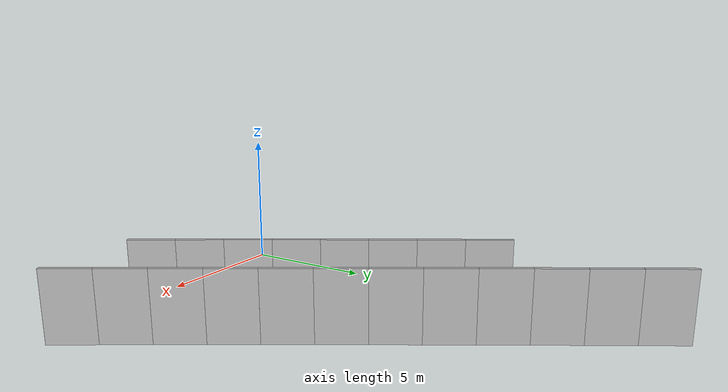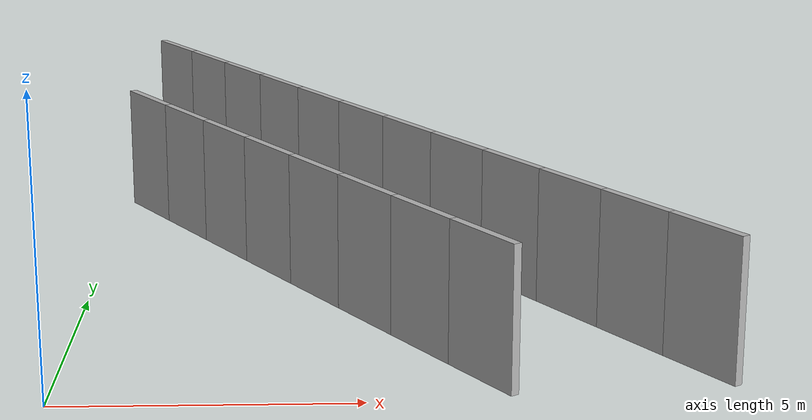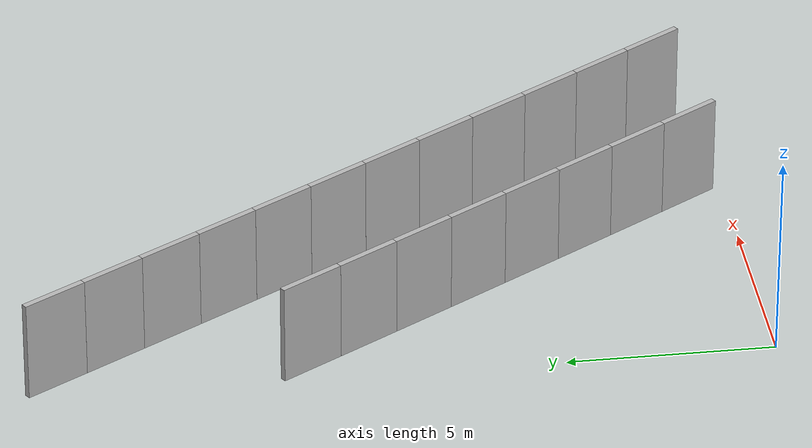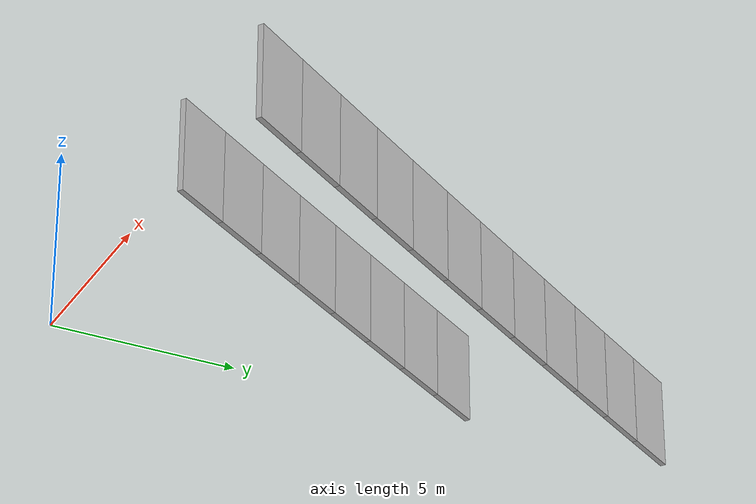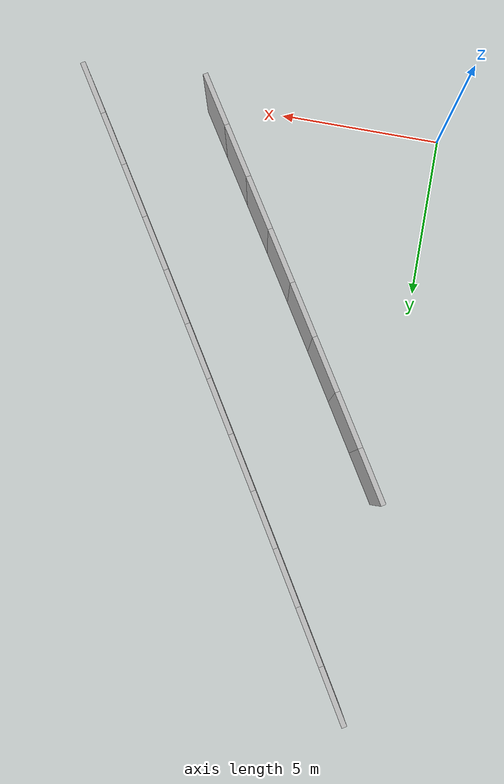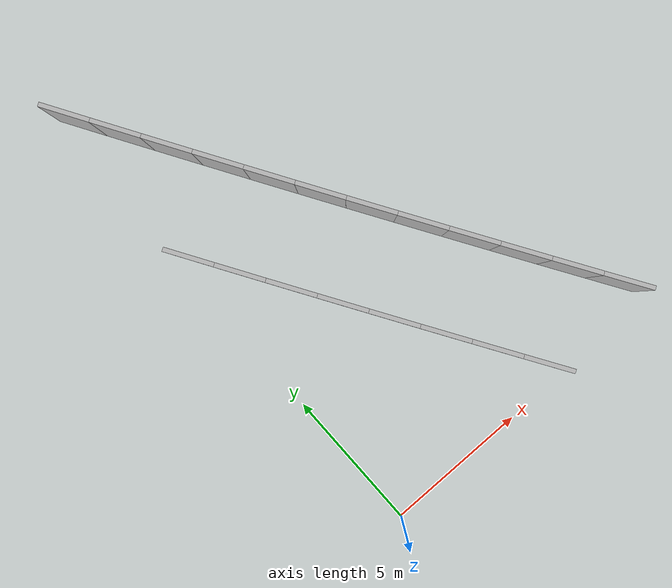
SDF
<?xml version="1.0" ?>
<sdf version="1.6">
  <model name="sps_4826">
    <pose frame="">0 0 0 0 -0 0</pose>
    <static>1</static>
    <self_collide>0</self_collide>
    <allow_auto_disable>0</allow_auto_disable>
    <link name="Wall6490">
      <kinematic>0</kinematic>
      <gravity>1</gravity>
      <self_collide>0</self_collide>
      <collision name="collision">
        <geometry>
          <box>
            <size>1.68624 0.15 2.5</size>
          </box>
        </geometry>
        <pose frame="">0 0 0 0 -0 0</pose>
      </collision>
      <visual name="visual">
        <geometry>
          <box>
            <size>1.68624 0.15 2.5</size>
          </box>
        </geometry>
        <pose frame="">0 0 0 0 -0 0</pose>
        <cast_shadows>1</cast_shadows>
        <transparency>0.0</transparency>
      </visual>
      <pose frame="">0.605552 10.9577 1.25 0 0 -1.01631</pose>
    </link>
    <link name="Wall6491">
      <kinematic>0</kinematic>
      <gravity>1</gravity>
      <self_collide>0</self_collide>
      <collision name="collision">
        <geometry>
          <box>
            <size>1.68605 0.15 2.5</size>
          </box>
        </geometry>
        <pose frame="">0 0 0 0 -0 0</pose>
      </collision>
      <visual name="visual">
        <geometry>
          <box>
            <size>1.68605 0.15 2.5</size>
          </box>
        </geometry>
        <pose frame="">0 0 0 0 -0 0</pose>
        <cast_shadows>1</cast_shadows>
        <transparency>0.0</transparency>
      </visual>
      <pose frame="">1.49447 9.52492 1.25 0 0 -1.01471</pose>
    </link>
    <link name="Wall6492">
      <kinematic>0</kinematic>
      <gravity>1</gravity>
      <self_collide>0</self_collide>
      <collision name="collision">
        <geometry>
          <box>
            <size>1.68621 0.15 2.5</size>
          </box>
        </geometry>
        <pose frame="">0 0 0 0 -0 0</pose>
      </collision>
      <visual name="visual">
        <geometry>
          <box>
            <size>1.68621 0.15 2.5</size>
          </box>
        </geometry>
        <pose frame="">0 0 0 0 -0 0</pose>
        <cast_shadows>1</cast_shadows>
        <transparency>0.0</transparency>
      </visual>
      <pose frame="">2.38576 8.09361 1.25 0 0 -1.01298</pose>
    </link>
    <link name="Wall6493">
      <kinematic>0</kinematic>
      <gravity>1</gravity>
      <self_collide>0</self_collide>
      <collision name="collision">
        <geometry>
          <box>
            <size>1.68632 0.15 2.5</size>
          </box>
        </geometry>
        <pose frame="">0 0 0 0 -0 0</pose>
      </collision>
      <visual name="visual">
        <geometry>
          <box>
            <size>1.68632 0.15 2.5</size>
          </box>
        </geometry>
        <pose frame="">0 0 0 0 -0 0</pose>
        <cast_shadows>1</cast_shadows>
        <transparency>0.0</transparency>
      </visual>
      <pose frame="">3.27956 6.66371 1.25 0 0 -1.01131</pose>
    </link>
    <link name="Wall6494">
      <kinematic>0</kinematic>
      <gravity>1</gravity>
      <self_collide>0</self_collide>
      <collision name="collision">
        <geometry>
          <box>
            <size>1.68624 0.15 2.5</size>
          </box>
        </geometry>
        <pose frame="">0 0 0 0 -0 0</pose>
      </collision>
      <visual name="visual">
        <geometry>
          <box>
            <size>1.68624 0.15 2.5</size>
          </box>
        </geometry>
        <pose frame="">0 0 0 0 -0 0</pose>
        <cast_shadows>1</cast_shadows>
        <transparency>0.0</transparency>
      </visual>
      <pose frame="">4.17577 5.2353 1.25 0 0 -1.00961</pose>
    </link>
    <link name="Wall6495">
      <kinematic>0</kinematic>
      <gravity>1</gravity>
      <self_collide>0</self_collide>
      <collision name="collision">
        <geometry>
          <box>
            <size>1.68617 0.15 2.5</size>
          </box>
        </geometry>
        <pose frame="">0 0 0 0 -0 0</pose>
      </collision>
      <visual name="visual">
        <geometry>
          <box>
            <size>1.68617 0.15 2.5</size>
          </box>
        </geometry>
        <pose frame="">0 0 0 0 -0 0</pose>
        <cast_shadows>1</cast_shadows>
        <transparency>0.0</transparency>
      </visual>
      <pose frame="">5.07436 3.80849 1.25 0 0 -1.00791</pose>
    </link>
    <link name="Wall6496">
      <kinematic>0</kinematic>
      <gravity>1</gravity>
      <self_collide>0</self_collide>
      <collision name="collision">
        <geometry>
          <box>
            <size>1.68623 0.15 2.5</size>
          </box>
        </geometry>
        <pose frame="">0 0 0 0 -0 0</pose>
      </collision>
      <visual name="visual">
        <geometry>
          <box>
            <size>1.68623 0.15 2.5</size>
          </box>
        </geometry>
        <pose frame="">0 0 0 0 -0 0</pose>
        <cast_shadows>1</cast_shadows>
        <transparency>0.0</transparency>
      </visual>
      <pose frame="">5.97536 2.38319 1.25 0 0 -1.00623</pose>
    </link>
    <link name="Wall6497">
      <kinematic>0</kinematic>
      <gravity>1</gravity>
      <self_collide>0</self_collide>
      <collision name="collision">
        <geometry>
          <box>
            <size>1.68609 0.15 2.5</size>
          </box>
        </geometry>
        <pose frame="">0 0 0 0 -0 0</pose>
      </collision>
      <visual name="visual">
        <geometry>
          <box>
            <size>1.68609 0.15 2.5</size>
          </box>
        </geometry>
        <pose frame="">0 0 0 0 -0 0</pose>
        <cast_shadows>1</cast_shadows>
        <transparency>0.0</transparency>
      </visual>
      <pose frame="">6.87865 0.959395 1.25 0 0 -1.00467</pose>
    </link>
    <link name="Wall9243">
      <kinematic>0</kinematic>
      <gravity>1</gravity>
      <self_collide>0</self_collide>
      <collision name="collision">
        <geometry>
          <box>
            <size>1.68079 0.15 2.5</size>
          </box>
        </geometry>
        <pose frame="">0 0 0 0 -0 0</pose>
      </collision>
      <visual name="visual">
        <geometry>
          <box>
            <size>1.68079 0.15 2.5</size>
          </box>
        </geometry>
        <pose frame="">0 0 0 0 -0 0</pose>
        <cast_shadows>1</cast_shadows>
        <transparency>0.0</transparency>
      </visual>
      <pose frame="">10.482 1.25838 1.25 0 -0 2.13866</pose>
    </link>
    <link name="Wall9244">
      <kinematic>0</kinematic>
      <gravity>1</gravity>
      <self_collide>0</self_collide>
      <collision name="collision">
        <geometry>
          <box>
            <size>1.6808 0.15 2.5</size>
          </box>
        </geometry>
        <pose frame="">0 0 0 0 -0 0</pose>
      </collision>
      <visual name="visual">
        <geometry>
          <box>
            <size>1.6808 0.15 2.5</size>
          </box>
        </geometry>
        <pose frame="">0 0 0 0 -0 0</pose>
        <cast_shadows>1</cast_shadows>
        <transparency>0.0</transparency>
      </visual>
      <pose frame="">9.57915 2.67607 1.25 0 -0 2.13711</pose>
    </link>
    <link name="Wall9245">
      <kinematic>0</kinematic>
      <gravity>1</gravity>
      <self_collide>0</self_collide>
      <collision name="collision">
        <geometry>
          <box>
            <size>1.68082 0.15 2.5</size>
          </box>
        </geometry>
        <pose frame="">0 0 0 0 -0 0</pose>
      </collision>
      <visual name="visual">
        <geometry>
          <box>
            <size>1.68082 0.15 2.5</size>
          </box>
        </geometry>
        <pose frame="">0 0 0 0 -0 0</pose>
        <cast_shadows>1</cast_shadows>
        <transparency>0.0</transparency>
      </visual>
      <pose frame="">8.67864 4.09529 1.25 0 -0 2.1353</pose>
    </link>
    <link name="Wall9246">
      <kinematic>0</kinematic>
      <gravity>1</gravity>
      <self_collide>0</self_collide>
      <collision name="collision">
        <geometry>
          <box>
            <size>1.6809 0.15 2.5</size>
          </box>
        </geometry>
        <pose frame="">0 0 0 0 -0 0</pose>
      </collision>
      <visual name="visual">
        <geometry>
          <box>
            <size>1.6809 0.15 2.5</size>
          </box>
        </geometry>
        <pose frame="">0 0 0 0 -0 0</pose>
        <cast_shadows>1</cast_shadows>
        <transparency>0.0</transparency>
      </visual>
      <pose frame="">7.78054 5.5161 1.25 0 -0 2.13368</pose>
    </link>
    <link name="Wall9247">
      <kinematic>0</kinematic>
      <gravity>1</gravity>
      <self_collide>0</self_collide>
      <collision name="collision">
        <geometry>
          <box>
            <size>1.68077 0.15 2.5</size>
          </box>
        </geometry>
        <pose frame="">0 0 0 0 -0 0</pose>
      </collision>
      <visual name="visual">
        <geometry>
          <box>
            <size>1.68077 0.15 2.5</size>
          </box>
        </geometry>
        <pose frame="">0 0 0 0 -0 0</pose>
        <cast_shadows>1</cast_shadows>
        <transparency>0.0</transparency>
      </visual>
      <pose frame="">6.88485 6.9384 1.25 0 -0 2.13192</pose>
    </link>
    <link name="Wall9248">
      <kinematic>0</kinematic>
      <gravity>1</gravity>
      <self_collide>0</self_collide>
      <collision name="collision">
        <geometry>
          <box>
            <size>1.68074 0.15 2.5</size>
          </box>
        </geometry>
        <pose frame="">0 0 0 0 -0 0</pose>
      </collision>
      <visual name="visual">
        <geometry>
          <box>
            <size>1.68074 0.15 2.5</size>
          </box>
        </geometry>
        <pose frame="">0 0 0 0 -0 0</pose>
        <cast_shadows>1</cast_shadows>
        <transparency>0.0</transparency>
      </visual>
      <pose frame="">5.99154 8.36211 1.25 0 -0 2.13039</pose>
    </link>
    <link name="Wall9249">
      <kinematic>0</kinematic>
      <gravity>1</gravity>
      <self_collide>0</self_collide>
      <collision name="collision">
        <geometry>
          <box>
            <size>1.68075 0.15 2.5</size>
          </box>
        </geometry>
        <pose frame="">0 0 0 0 -0 0</pose>
      </collision>
      <visual name="visual">
        <geometry>
          <box>
            <size>1.68075 0.15 2.5</size>
          </box>
        </geometry>
        <pose frame="">0 0 0 0 -0 0</pose>
        <cast_shadows>1</cast_shadows>
        <transparency>0.0</transparency>
      </visual>
      <pose frame="">5.10064 9.78731 1.25 0 -0 2.12855</pose>
    </link>
    <link name="Wall9250">
      <kinematic>0</kinematic>
      <gravity>1</gravity>
      <self_collide>0</self_collide>
      <collision name="collision">
        <geometry>
          <box>
            <size>1.68079 0.15 2.5</size>
          </box>
        </geometry>
        <pose frame="">0 0 0 0 -0 0</pose>
      </collision>
      <visual name="visual">
        <geometry>
          <box>
            <size>1.68079 0.15 2.5</size>
          </box>
        </geometry>
        <pose frame="">0 0 0 0 -0 0</pose>
        <cast_shadows>1</cast_shadows>
        <transparency>0.0</transparency>
      </visual>
      <pose frame="">4.21224 11.2141 1.25 0 -0 2.12687</pose>
    </link>
    <link name="Wall9251">
      <kinematic>0</kinematic>
      <gravity>1</gravity>
      <self_collide>0</self_collide>
      <collision name="collision">
        <geometry>
          <box>
            <size>1.68087 0.15 2.5</size>
          </box>
        </geometry>
        <pose frame="">0 0 0 0 -0 0</pose>
      </collision>
      <visual name="visual">
        <geometry>
          <box>
            <size>1.68087 0.15 2.5</size>
          </box>
        </geometry>
        <pose frame="">0 0 0 0 -0 0</pose>
        <cast_shadows>1</cast_shadows>
        <transparency>0.0</transparency>
      </visual>
      <pose frame="">3.32613 12.6424 1.25 0 -0 2.1253</pose>
    </link>
    <link name="Wall9252">
      <kinematic>0</kinematic>
      <gravity>1</gravity>
      <self_collide>0</self_collide>
      <collision name="collision">
        <geometry>
          <box>
            <size>1.68069 0.15 2.5</size>
          </box>
        </geometry>
        <pose frame="">0 0 0 0 -0 0</pose>
      </collision>
      <visual name="visual">
        <geometry>
          <box>
            <size>1.68069 0.15 2.5</size>
          </box>
        </geometry>
        <pose frame="">0 0 0 0 -0 0</pose>
        <cast_shadows>1</cast_shadows>
        <transparency>0.0</transparency>
      </visual>
      <pose frame="">2.44244 14.0721 1.25 0 -0 2.12353</pose>
    </link>
    <link name="Wall9253">
      <kinematic>0</kinematic>
      <gravity>1</gravity>
      <self_collide>0</self_collide>
      <collision name="collision">
        <geometry>
          <box>
            <size>1.68059 0.15 2.5</size>
          </box>
        </geometry>
        <pose frame="">0 0 0 0 -0 0</pose>
      </collision>
      <visual name="visual">
        <geometry>
          <box>
            <size>1.68059 0.15 2.5</size>
          </box>
        </geometry>
        <pose frame="">0 0 0 0 -0 0</pose>
        <cast_shadows>1</cast_shadows>
        <transparency>0.0</transparency>
      </visual>
      <pose frame="">1.56094 15.503 1.25 0 -0 2.12233</pose>
    </link>
    <link name="Wall9254">
      <kinematic>0</kinematic>
      <gravity>1</gravity>
      <self_collide>0</self_collide>
      <collision name="collision">
        <geometry>
          <box>
            <size>1.68087 0.15 2.5</size>
          </box>
        </geometry>
        <pose frame="">0 0 0 0 -0 0</pose>
      </collision>
      <visual name="visual">
        <geometry>
          <box>
            <size>1.68087 0.15 2.5</size>
          </box>
        </geometry>
        <pose frame="">0 0 0 0 -0 0</pose>
        <cast_shadows>1</cast_shadows>
        <transparency>0.0</transparency>
      </visual>
      <pose frame="">0.681846 16.9355 1.25 0 -0 2.1201</pose>
    </link>
  </model>
</sdf>
